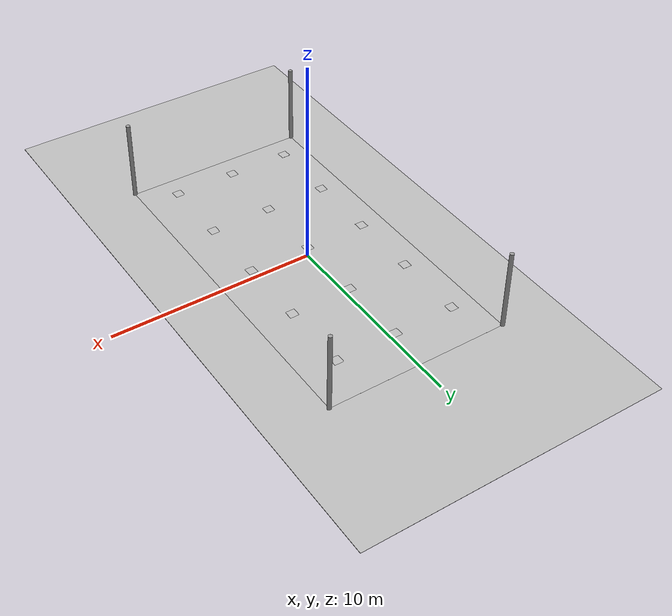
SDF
<sdf version="1.5">
 <world name="default">
  <include><uri>model://sun</uri></include>
  <include><uri>model://agri_field</uri><pose>0 0 -0.01 0 0 0</pose></include>
  <include><uri>model://agri_aruco</uri><pose>0 0 -0.5 0 0 0</pose></include>
  <scene>
   <ambient>0.8 0.8 0.8 1</ambient>
   <background>0.8 0.9 1 1</background>
   <shadows>false</shadows>
   <grid>false</grid>
   <origin_visual>false</origin_visual>
  </scene>
  <physics name="default_physics" default="0" type="ode">
   <gravity>0 0 -9.8066</gravity>
   <ode>
    <solver>
     <type>quick</type>
     <iters>10</iters>
     <sor>1.3</sor>
     <use_dynamic_moi_rescaling>0</use_dynamic_moi_rescaling>
    </solver>
    <constraints>
     <cfm>0</cfm>
     <erp>0.2</erp>
     <contact_max_correcting_vel>100</contact_max_correcting_vel>
     <contact_surface_layer>0.001</contact_surface_layer>
    </constraints>
   </ode>
   <max_step_size>0.004</max_step_size>
   <real_time_factor>1</real_time_factor>
   <real_time_update_rate>250</real_time_update_rate>
   <magnetic_field>6.0e-6 2.3e-5 -4.2e-5</magnetic_field>
  </physics>
 </world>
</sdf>

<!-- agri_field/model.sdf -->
<sdf version='1.7'>
  <model name='agri_field'>
    <link name='link'>
      <self_collide>0</self_collide>
      <enable_wind>0</enable_wind>
      <kinematic>0</kinematic>
      <pose>0 0 0 0 -0 0</pose>
      <visual name='outside_visual'>
        <cast_shadows>0</cast_shadows>
        <geometry>
          <box>
            <size>15 30 0.019</size>
          </box>
        </geometry>
        <material>
          <script>
            <uri>model://agri_field/materials/scripts</uri>
            <uri>model://agri_field/materials/textures</uri>
            <name>outside_dirt</name>
          </script>
          <shader type='pixel'/>
        </material>
        <pose>0 0 0 0 -0 0</pose>
        <transparency>0</transparency>
      </visual>
      <visual name='inside_visual'>
        <cast_shadows>0</cast_shadows>
        <geometry>
          <box>
            <size>9 17 0.02</size>
          </box>
        </geometry>
        <material>
          <script>
            <uri>model://agri_field/materials/scripts</uri>
            <uri>model://agri_field/materials/textures</uri>
            <name>inside_dirt</name>
          </script>
          <shader type='pixel'/>
        </material>
        <pose>0 0 0 0 -0 0</pose>
        <transparency>0</transparency>
      </visual>
      <collision name='collision'>
        <laser_retro>0</laser_retro>
        <max_contacts>10</max_contacts>
        <pose>0 0 0 0 -0 0</pose>
        <geometry>
          <box>
            <size>15 30 0.02</size>
          </box>
        </geometry>
        <surface>
          <friction>
            <ode>
              <mu>1</mu>
              <mu2>1</mu2>
              <fdir1>0 0 0</fdir1>
              <slip1>0</slip1>
              <slip2>0</slip2>
            </ode>
            <torsional>
              <coefficient>1</coefficient>
              <patch_radius>0</patch_radius>
              <surface_radius>0</surface_radius>
              <use_patch_radius>1</use_patch_radius>
              <ode>
                <slip>0</slip>
              </ode>
            </torsional>
          </friction>
          <bounce>
            <restitution_coefficient>0</restitution_coefficient>
            <threshold>1e+06</threshold>
          </bounce>
          <contact>
            <collide_without_contact>0</collide_without_contact>
            <collide_without_contact_bitmask>1</collide_without_contact_bitmask>
            <collide_bitmask>1</collide_bitmask>
            <ode>
              <soft_cfm>0</soft_cfm>
              <soft_erp>0.2</soft_erp>
              <kp>1e+13</kp>
              <kd>1</kd>
              <max_vel>0.01</max_vel>
              <min_depth>0</min_depth>
            </ode>
            <bullet>
              <split_impulse>1</split_impulse>
              <split_impulse_penetration_threshold>-0.01</split_impulse_penetration_threshold>
              <soft_cfm>0</soft_cfm>
              <soft_erp>0.2</soft_erp>
              <kp>1e+13</kp>
              <kd>1</kd>
            </bullet>
          </contact>
        </surface>
      </collision>
    </link>
    <link name='link_0'>
      <inertial>
        <mass>1</mass>
        <inertia>
          <ixx>0.145833</ixx>
          <ixy>0</ixy>
          <ixz>0</ixz>
          <iyy>0.145833</iyy>
          <iyz>0</iyz>
          <izz>0.125</izz>
        </inertia>
        <pose>0 0 0 0 -0 0</pose>
      </inertial>
      <pose>4.5 -8.5 0.01 0 -0 0</pose>
      <gravity>1</gravity>
      <self_collide>0</self_collide>
      <kinematic>0</kinematic>
      <enable_wind>0</enable_wind>
      <visual name='visual'>
        <pose>0 0 2 0 -0 0</pose>
        <geometry>
          <cylinder>
            <radius>0.1</radius>
            <length>4</length>
          </cylinder>
        </geometry>
        <material>
          <lighting>1</lighting>
          <script>
            <uri>file://media/materials/scripts/gazebo.material</uri>
            <name>Gazebo/Grey</name>
          </script>
          <shader type='pixel'>
            <normal_map>__default__</normal_map>
          </shader>
          <ambient>0.3 0.3 0.3 1</ambient>
          <diffuse>0.7 0.7 0.7 1</diffuse>
          <specular>0.01 0.01 0.01 1</specular>
          <emissive>0 0 0 1</emissive>
        </material>
        <transparency>0</transparency>
        <cast_shadows>1</cast_shadows>
      </visual>
      <collision name='collision_2'>
        <laser_retro>0</laser_retro>
        <max_contacts>10</max_contacts>
        <pose>0 0 2 0 -0 0</pose>
        <geometry>
          <cylinder>
            <radius>0.1</radius>
            <length>4</length>
          </cylinder>
        </geometry>
        <surface>
          <friction>
            <ode>
              <mu>1</mu>
              <mu2>1</mu2>
              <fdir1>0 0 0</fdir1>
              <slip1>0</slip1>
              <slip2>0</slip2>
            </ode>
            <torsional>
              <coefficient>1</coefficient>
              <patch_radius>0</patch_radius>
              <surface_radius>0</surface_radius>
              <use_patch_radius>1</use_patch_radius>
              <ode>
                <slip>0</slip>
              </ode>
            </torsional>
          </friction>
          <bounce>
            <restitution_coefficient>0</restitution_coefficient>
            <threshold>1e+06</threshold>
          </bounce>
          <contact>
            <collide_without_contact>0</collide_without_contact>
            <collide_without_contact_bitmask>1</collide_without_contact_bitmask>
            <collide_bitmask>1</collide_bitmask>
            <ode>
              <soft_cfm>0</soft_cfm>
              <soft_erp>0.2</soft_erp>
              <kp>1e+13</kp>
              <kd>1</kd>
              <max_vel>0.01</max_vel>
              <min_depth>0</min_depth>
            </ode>
            <bullet>
              <split_impulse>1</split_impulse>
              <split_impulse_penetration_threshold>-0.01</split_impulse_penetration_threshold>
              <soft_cfm>0</soft_cfm>
              <soft_erp>0.2</soft_erp>
              <kp>1e+13</kp>
              <kd>1</kd>
            </bullet>
          </contact>
        </surface>
      </collision>
    </link>
    <link name='link_0_clone'>
      <inertial>
        <mass>1</mass>
        <inertia>
          <ixx>0.145833</ixx>
          <ixy>0</ixy>
          <ixz>0</ixz>
          <iyy>0.145833</iyy>
          <iyz>0</iyz>
          <izz>0.125</izz>
        </inertia>
        <pose>0 0 0 0 -0 0</pose>
      </inertial>
      <pose>-4.5 -8.5 0.01 0 -0 0</pose>
      <gravity>1</gravity>
      <self_collide>0</self_collide>
      <kinematic>0</kinematic>
      <enable_wind>0</enable_wind>
      <visual name='visual'>
        <pose>0 0 2 0 -0 0</pose>
        <geometry>
          <cylinder>
            <radius>0.1</radius>
            <length>4</length>
          </cylinder>
        </geometry>
        <material>
          <lighting>1</lighting>
          <script>
            <uri>file://media/materials/scripts/gazebo.material</uri>
            <name>Gazebo/Grey</name>
          </script>
          <shader type='pixel'>
            <normal_map>__default__</normal_map>
          </shader>
          <ambient>0.3 0.3 0.3 1</ambient>
          <diffuse>0.7 0.7 0.7 1</diffuse>
          <specular>0.01 0.01 0.01 1</specular>
          <emissive>0 0 0 1</emissive>
        </material>
        <transparency>0</transparency>
        <cast_shadows>1</cast_shadows>
      </visual>
      <collision name='collision_2'>
        <laser_retro>0</laser_retro>
        <max_contacts>10</max_contacts>
        <pose>0 0 2 0 -0 0</pose>
        <geometry>
          <cylinder>
            <radius>0.1</radius>
            <length>4</length>
          </cylinder>
        </geometry>
        <surface>
          <friction>
            <ode>
              <mu>1</mu>
              <mu2>1</mu2>
              <fdir1>0 0 0</fdir1>
              <slip1>0</slip1>
              <slip2>0</slip2>
            </ode>
            <torsional>
              <coefficient>1</coefficient>
              <patch_radius>0</patch_radius>
              <surface_radius>0</surface_radius>
              <use_patch_radius>1</use_patch_radius>
              <ode>
                <slip>0</slip>
              </ode>
            </torsional>
          </friction>
          <bounce>
            <restitution_coefficient>0</restitution_coefficient>
            <threshold>1e+06</threshold>
          </bounce>
          <contact>
            <collide_without_contact>0</collide_without_contact>
            <collide_without_contact_bitmask>1</collide_without_contact_bitmask>
            <collide_bitmask>1</collide_bitmask>
            <ode>
              <soft_cfm>0</soft_cfm>
              <soft_erp>0.2</soft_erp>
              <kp>1e+13</kp>
              <kd>1</kd>
              <max_vel>0.01</max_vel>
              <min_depth>0</min_depth>
            </ode>
            <bullet>
              <split_impulse>1</split_impulse>
              <split_impulse_penetration_threshold>-0.01</split_impulse_penetration_threshold>
              <soft_cfm>0</soft_cfm>
              <soft_erp>0.2</soft_erp>
              <kp>1e+13</kp>
              <kd>1</kd>
            </bullet>
          </contact>
        </surface>
      </collision>
    </link>
    <link name='link_0_clone_0'>
      <inertial>
        <mass>1</mass>
        <inertia>
          <ixx>0.145833</ixx>
          <ixy>0</ixy>
          <ixz>0</ixz>
          <iyy>0.145833</iyy>
          <iyz>0</iyz>
          <izz>0.125</izz>
        </inertia>
        <pose>0 0 0 0 -0 0</pose>
      </inertial>
      <pose>4.5 8.5 0.01 0 -0 0</pose>
      <gravity>1</gravity>
      <self_collide>0</self_collide>
      <kinematic>0</kinematic>
      <enable_wind>0</enable_wind>
      <visual name='visual'>
        <pose>0 0 2 0 -0 0</pose>
        <geometry>
          <cylinder>
            <radius>0.1</radius>
            <length>4</length>
          </cylinder>
        </geometry>
        <material>
          <lighting>1</lighting>
          <script>
            <uri>file://media/materials/scripts/gazebo.material</uri>
            <name>Gazebo/Grey</name>
          </script>
          <shader type='pixel'>
            <normal_map>__default__</normal_map>
          </shader>
          <ambient>0.3 0.3 0.3 1</ambient>
          <diffuse>0.7 0.7 0.7 1</diffuse>
          <specular>0.01 0.01 0.01 1</specular>
          <emissive>0 0 0 1</emissive>
        </material>
        <transparency>0</transparency>
        <cast_shadows>1</cast_shadows>
      </visual>
      <collision name='collision_2'>
        <laser_retro>0</laser_retro>
        <max_contacts>10</max_contacts>
        <pose>0 0 2 0 -0 0</pose>
        <geometry>
          <cylinder>
            <radius>0.1</radius>
            <length>4</length>
          </cylinder>
        </geometry>
        <surface>
          <friction>
            <ode>
              <mu>1</mu>
              <mu2>1</mu2>
              <fdir1>0 0 0</fdir1>
              <slip1>0</slip1>
              <slip2>0</slip2>
            </ode>
            <torsional>
              <coefficient>1</coefficient>
              <patch_radius>0</patch_radius>
              <surface_radius>0</surface_radius>
              <use_patch_radius>1</use_patch_radius>
              <ode>
                <slip>0</slip>
              </ode>
            </torsional>
          </friction>
          <bounce>
            <restitution_coefficient>0</restitution_coefficient>
            <threshold>1e+06</threshold>
          </bounce>
          <contact>
            <collide_without_contact>0</collide_without_contact>
            <collide_without_contact_bitmask>1</collide_without_contact_bitmask>
            <collide_bitmask>1</collide_bitmask>
            <ode>
              <soft_cfm>0</soft_cfm>
              <soft_erp>0.2</soft_erp>
              <kp>1e+13</kp>
              <kd>1</kd>
              <max_vel>0.01</max_vel>
              <min_depth>0</min_depth>
            </ode>
            <bullet>
              <split_impulse>1</split_impulse>
              <split_impulse_penetration_threshold>-0.01</split_impulse_penetration_threshold>
              <soft_cfm>0</soft_cfm>
              <soft_erp>0.2</soft_erp>
              <kp>1e+13</kp>
              <kd>1</kd>
            </bullet>
          </contact>
        </surface>
      </collision>
    </link>
    <link name='link_0_clone_0_clone'>
      <inertial>
        <mass>1</mass>
        <inertia>
          <ixx>0.145833</ixx>
          <ixy>0</ixy>
          <ixz>0</ixz>
          <iyy>0.145833</iyy>
          <iyz>0</iyz>
          <izz>0.125</izz>
        </inertia>
        <pose>0 0 0 0 -0 0</pose>
      </inertial>
      <pose>-4.5 8.5 0.01 0 -0 0</pose>
      <gravity>1</gravity>
      <self_collide>0</self_collide>
      <kinematic>0</kinematic>
      <enable_wind>0</enable_wind>
      <visual name='visual'>
        <pose>0 0 2 0 -0 0</pose>
        <geometry>
          <cylinder>
            <radius>0.1</radius>
            <length>4</length>
          </cylinder>
        </geometry>
        <material>
          <lighting>1</lighting>
          <script>
            <uri>file://media/materials/scripts/gazebo.material</uri>
            <name>Gazebo/Grey</name>
          </script>
          <shader type='pixel'>
            <normal_map>__default__</normal_map>
          </shader>
          <ambient>0.3 0.3 0.3 1</ambient>
          <diffuse>0.7 0.7 0.7 1</diffuse>
          <specular>0.01 0.01 0.01 1</specular>
          <emissive>0 0 0 1</emissive>
        </material>
        <transparency>0</transparency>
        <cast_shadows>1</cast_shadows>
      </visual>
      <collision name='collision_2'>
        <laser_retro>0</laser_retro>
        <max_contacts>10</max_contacts>
        <pose>0 0 2 0 -0 0</pose>
        <geometry>
          <cylinder>
            <radius>0.1</radius>
            <length>4</length>
          </cylinder>
        </geometry>
        <surface>
          <friction>
            <ode>
              <mu>1</mu>
              <mu2>1</mu2>
              <fdir1>0 0 0</fdir1>
              <slip1>0</slip1>
              <slip2>0</slip2>
            </ode>
            <torsional>
              <coefficient>1</coefficient>
              <patch_radius>0</patch_radius>
              <surface_radius>0</surface_radius>
              <use_patch_radius>1</use_patch_radius>
              <ode>
                <slip>0</slip>
              </ode>
            </torsional>
          </friction>
          <bounce>
            <restitution_coefficient>0</restitution_coefficient>
            <threshold>1e+06</threshold>
          </bounce>
          <contact>
            <collide_without_contact>0</collide_without_contact>
            <collide_without_contact_bitmask>1</collide_without_contact_bitmask>
            <collide_bitmask>1</collide_bitmask>
            <ode>
              <soft_cfm>0</soft_cfm>
              <soft_erp>0.2</soft_erp>
              <kp>1e+13</kp>
              <kd>1</kd>
              <max_vel>0.01</max_vel>
              <min_depth>0</min_depth>
            </ode>
            <bullet>
              <split_impulse>1</split_impulse>
              <split_impulse_penetration_threshold>-0.01</split_impulse_penetration_threshold>
              <soft_cfm>0</soft_cfm>
              <soft_erp>0.2</soft_erp>
              <kp>1e+13</kp>
              <kd>1</kd>
            </bullet>
          </contact>
        </surface>
      </collision>
    </link>
    <static>1</static>
    <allow_auto_disable>1</allow_auto_disable>
  </model>
</sdf>

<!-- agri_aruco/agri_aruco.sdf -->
<sdf version="1.5">
    <model name="aruco_2_99">
        <static>true</static>
        <link name="aruco_2_99_link">

<visual name="visual_marker_2_0">
    <pose>-3.0 -6.8 1.0 0.0 0.0 1.57079632679</pose>
    <cast_shadows>false</cast_shadows>
    <geometry>
        <box>
            <size>0.44 0.44 1e-3</size>
        </box>
    </geometry>
    <material>
        <script>
            <uri>model://aruco_cmit_txt/materials/scripts</uri>
            <uri>model://aruco_cmit_txt/materials/textures</uri>
            <name>aruco/marker_2_0</name>
        </script>
    </material>
</visual>

<visual name="visual_marker_2_1">
    <pose>0.0 -6.8 1.0 0.0 0.0 1.57079632679</pose>
    <cast_shadows>false</cast_shadows>
    <geometry>
        <box>
            <size>0.44 0.44 1e-3</size>
        </box>
    </geometry>
    <material>
        <script>
            <uri>model://aruco_cmit_txt/materials/scripts</uri>
            <uri>model://aruco_cmit_txt/materials/textures</uri>
            <name>aruco/marker_2_1</name>
        </script>
    </material>
</visual>

<visual name="visual_marker_2_2">
    <pose>3.0 -6.8 1.0 0.0 0.0 1.57079632679</pose>
    <cast_shadows>false</cast_shadows>
    <geometry>
        <box>
            <size>0.44 0.44 1e-3</size>
        </box>
    </geometry>
    <material>
        <script>
            <uri>model://aruco_cmit_txt/materials/scripts</uri>
            <uri>model://aruco_cmit_txt/materials/textures</uri>
            <name>aruco/marker_2_2</name>
        </script>
    </material>
</visual>

<visual name="visual_marker_2_3">
    <pose>-3.0 -3.4 1.0 0.0 0.0 1.57079632679</pose>
    <cast_shadows>false</cast_shadows>
    <geometry>
        <box>
            <size>0.44 0.44 1e-3</size>
        </box>
    </geometry>
    <material>
        <script>
            <uri>model://aruco_cmit_txt/materials/scripts</uri>
            <uri>model://aruco_cmit_txt/materials/textures</uri>
            <name>aruco/marker_2_3</name>
        </script>
    </material>
</visual>

<visual name="visual_marker_2_4">
    <pose>0.0 -3.4 1.0 0.0 0.0 1.57079632679</pose>
    <cast_shadows>false</cast_shadows>
    <geometry>
        <box>
            <size>0.44 0.44 1e-3</size>
        </box>
    </geometry>
    <material>
        <script>
            <uri>model://aruco_cmit_txt/materials/scripts</uri>
            <uri>model://aruco_cmit_txt/materials/textures</uri>
            <name>aruco/marker_2_4</name>
        </script>
    </material>
</visual>

<visual name="visual_marker_2_5">
    <pose>3.0 -3.4 1.0 0.0 0.0 1.57079632679</pose>
    <cast_shadows>false</cast_shadows>
    <geometry>
        <box>
            <size>0.44 0.44 1e-3</size>
        </box>
    </geometry>
    <material>
        <script>
            <uri>model://aruco_cmit_txt/materials/scripts</uri>
            <uri>model://aruco_cmit_txt/materials/textures</uri>
            <name>aruco/marker_2_5</name>
        </script>
    </material>
</visual>

<visual name="visual_marker_2_6">
    <pose>-3.0 0.0 1.0 0.0 0.0 1.57079632679</pose>
    <cast_shadows>false</cast_shadows>
    <geometry>
        <box>
            <size>0.44 0.44 1e-3</size>
        </box>
    </geometry>
    <material>
        <script>
            <uri>model://aruco_cmit_txt/materials/scripts</uri>
            <uri>model://aruco_cmit_txt/materials/textures</uri>
            <name>aruco/marker_2_6</name>
        </script>
    </material>
</visual>

<visual name="visual_marker_2_7">
    <pose>0.0 0.0 1.0 0.0 0.0 1.57079632679</pose>
    <cast_shadows>false</cast_shadows>
    <geometry>
        <box>
            <size>0.44 0.44 1e-3</size>
        </box>
    </geometry>
    <material>
        <script>
            <uri>model://aruco_cmit_txt/materials/scripts</uri>
            <uri>model://aruco_cmit_txt/materials/textures</uri>
            <name>aruco/marker_2_7</name>
        </script>
    </material>
</visual>

<visual name="visual_marker_2_8">
    <pose>3.0 0.0 1.0 0.0 0.0 1.57079632679</pose>
    <cast_shadows>false</cast_shadows>
    <geometry>
        <box>
            <size>0.44 0.44 1e-3</size>
        </box>
    </geometry>
    <material>
        <script>
            <uri>model://aruco_cmit_txt/materials/scripts</uri>
            <uri>model://aruco_cmit_txt/materials/textures</uri>
            <name>aruco/marker_2_8</name>
        </script>
    </material>
</visual>

<visual name="visual_marker_2_9">
    <pose>-3.0 3.4 1.0 0.0 0.0 1.57079632679</pose>
    <cast_shadows>false</cast_shadows>
    <geometry>
        <box>
            <size>0.44 0.44 1e-3</size>
        </box>
    </geometry>
    <material>
        <script>
            <uri>model://aruco_cmit_txt/materials/scripts</uri>
            <uri>model://aruco_cmit_txt/materials/textures</uri>
            <name>aruco/marker_2_9</name>
        </script>
    </material>
</visual>

<visual name="visual_marker_2_10">
    <pose>0.0 3.4 1.0 0.0 0.0 1.57079632679</pose>
    <cast_shadows>false</cast_shadows>
    <geometry>
        <box>
            <size>0.44 0.44 1e-3</size>
        </box>
    </geometry>
    <material>
        <script>
            <uri>model://aruco_cmit_txt/materials/scripts</uri>
            <uri>model://aruco_cmit_txt/materials/textures</uri>
            <name>aruco/marker_2_10</name>
        </script>
    </material>
</visual>

<visual name="visual_marker_2_11">
    <pose>3.0 3.4 1.0 0.0 0.0 1.57079632679</pose>
    <cast_shadows>false</cast_shadows>
    <geometry>
        <box>
            <size>0.44 0.44 1e-3</size>
        </box>
    </geometry>
    <material>
        <script>
            <uri>model://aruco_cmit_txt/materials/scripts</uri>
            <uri>model://aruco_cmit_txt/materials/textures</uri>
            <name>aruco/marker_2_11</name>
        </script>
    </material>
</visual>

<visual name="visual_marker_2_12">
    <pose>-3.0 6.8 1.0 0.0 0.0 1.57079632679</pose>
    <cast_shadows>false</cast_shadows>
    <geometry>
        <box>
            <size>0.44 0.44 1e-3</size>
        </box>
    </geometry>
    <material>
        <script>
            <uri>model://aruco_cmit_txt/materials/scripts</uri>
            <uri>model://aruco_cmit_txt/materials/textures</uri>
            <name>aruco/marker_2_12</name>
        </script>
    </material>
</visual>

<visual name="visual_marker_2_13">
    <pose>0.0 6.8 1.0 0.0 0.0 1.57079632679</pose>
    <cast_shadows>false</cast_shadows>
    <geometry>
        <box>
            <size>0.44 0.44 1e-3</size>
        </box>
    </geometry>
    <material>
        <script>
            <uri>model://aruco_cmit_txt/materials/scripts</uri>
            <uri>model://aruco_cmit_txt/materials/textures</uri>
            <name>aruco/marker_2_13</name>
        </script>
    </material>
</visual>

<visual name="visual_marker_2_14">
    <pose>3.0 6.8 1.0 0.0 0.0 1.57079632679</pose>
    <cast_shadows>false</cast_shadows>
    <geometry>
        <box>
            <size>0.44 0.44 1e-3</size>
        </box>
    </geometry>
    <material>
        <script>
            <uri>model://aruco_cmit_txt/materials/scripts</uri>
            <uri>model://aruco_cmit_txt/materials/textures</uri>
            <name>aruco/marker_2_14</name>
        </script>
    </material>
</visual>
        </link>
    </model>
</sdf>
